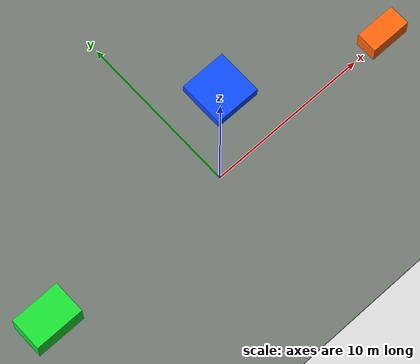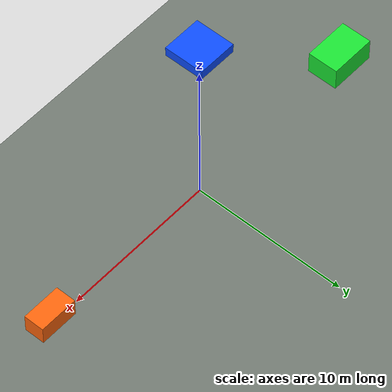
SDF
<?xml version="1.0" ?>
<sdf version="1.10">
  <world name="agconav_500m_world">

    <plugin
      filename="gz-sim-physics-system"
      name="gz::sim::systems::Physics"/>

    <plugin
      filename="gz-sim-user-commands-system"
      name="gz::sim::systems::UserCommands"/>

    <plugin
      filename="gz-sim-scene-broadcaster-system"
      name="gz::sim::systems::SceneBroadcaster"/>

    <!-- GPU LiDAR 센서를 동작시키는 시스템 -->
    <plugin
      filename="gz-sim-sensors-system"
      name="gz::sim::systems::Sensors">
      <render_engine>ogre2</render_engine>
    </plugin>

    <gravity>0 0 -9.81</gravity>

    <physics name="default_physics" type="ode">
      <max_step_size>0.001</max_step_size>
      <real_time_factor>1.0</real_time_factor>
    </physics>

    <light type="directional" name="sun">
      <cast_shadows>true</cast_shadows>
      <pose>0 0 100 0 0 0</pose>
      <diffuse>0.9 0.9 0.9 1</diffuse>
      <specular>0.2 0.2 0.2 1</specular>
      <direction>-0.4 0.2 -1</direction>
    </light>

    <!-- 500m × 500m 바닥 -->
    <model name="ground_500m">
      <static>true</static>
      <pose>0 0 -0.1 0 0 0</pose>

      <link name="ground_link">
        <collision name="collision">
          <geometry>
            <box>
              <size>500 500 0.2</size>
            </box>
          </geometry>
        </collision>

        <visual name="visual">
          <geometry>
            <box>
              <size>500 500 0.2</size>
            </box>
          </geometry>
          <material>
            <ambient>0.35 0.38 0.35 1</ambient>
            <diffuse>0.45 0.48 0.45 1</diffuse>
          </material>
        </visual>
      </link>
    </model>

    <!-- 파란색 더미 드론 -->
    <model name="drone">
      <static>true</static>
      <pose>0 0 12 0 0 0</pose>

      <link name="base_link">
        <visual name="body">
          <geometry>
            <box>
              <size>2.5 2.5 0.6</size>
            </box>
          </geometry>
          <material>
            <ambient>0.05 0.2 0.9 1</ambient>
            <diffuse>0.05 0.3 1 1</diffuse>
          </material>
        </visual>

        <!-- +Y축으로 90도 회전하여 아래쪽을 바라봄 -->
        <sensor name="lidar" type="gpu_lidar">
          <pose>0 0 -0.4 0 1.5708 0</pose>
          <topic>/drone/lidar</topic>
          <update_rate>10</update_rate>
          <always_on>true</always_on>
          <visualize>true</visualize>

          <lidar>
            <scan>
              <horizontal>
                <samples>360</samples>
                <resolution>1</resolution>
                <min_angle>-3.14159</min_angle>
                <max_angle>3.14159</max_angle>
              </horizontal>
              <vertical>
                <samples>16</samples>
                <resolution>1</resolution>
                <min_angle>-0.2618</min_angle>
                <max_angle>0.2618</max_angle>
              </vertical>
            </scan>
            <range>
              <min>0.3</min>
              <max>100</max>
              <resolution>0.02</resolution>
            </range>
          </lidar>
        </sensor>
      </link>
    </model>

    <!-- 초록색 더미 4륜 로봇 -->
    <model name="wheel">
      <static>true</static>
      <pose>-12 0 0.75 0 0 0</pose>

      <link name="base_link">
        <visual name="body">
          <geometry>
            <box>
              <size>3 2 1.5</size>
            </box>
          </geometry>
          <material>
            <ambient>0.05 0.7 0.1 1</ambient>
            <diffuse>0.1 0.9 0.2 1</diffuse>
          </material>
        </visual>

        <sensor name="lidar" type="gpu_lidar">
          <pose>0 0 1.0 0 0 0</pose>
          <topic>/wheel/lidar</topic>
          <update_rate>10</update_rate>
          <always_on>true</always_on>
          <visualize>true</visualize>

          <lidar>
            <scan>
              <horizontal>
                <samples>360</samples>
                <resolution>1</resolution>
                <min_angle>-3.14159</min_angle>
                <max_angle>3.14159</max_angle>
              </horizontal>
              <vertical>
                <samples>16</samples>
                <resolution>1</resolution>
                <min_angle>-0.2618</min_angle>
                <max_angle>0.2618</max_angle>
              </vertical>
            </scan>
            <range>
              <min>0.3</min>
              <max>80</max>
              <resolution>0.02</resolution>
            </range>
          </lidar>
        </sensor>
      </link>
    </model>

    <!-- 주황색 더미 4족 로봇 -->
    <model name="leg">
      <static>true</static>
      <pose>12 0 0.9 0 0 0</pose>

      <link name="base_link">
        <visual name="body">
          <geometry>
            <box>
              <size>2.5 1.3 1.2</size>
            </box>
          </geometry>
          <material>
            <ambient>0.9 0.3 0.05 1</ambient>
            <diffuse>1 0.4 0.05 1</diffuse>
          </material>
        </visual>

        <sensor name="lidar" type="gpu_lidar">
          <pose>0 0 0.9 0 0 0</pose>
          <topic>/leg/lidar</topic>
          <update_rate>10</update_rate>
          <always_on>true</always_on>
          <visualize>true</visualize>

          <lidar>
            <scan>
              <horizontal>
                <samples>360</samples>
                <resolution>1</resolution>
                <min_angle>-3.14159</min_angle>
                <max_angle>3.14159</max_angle>
              </horizontal>
              <vertical>
                <samples>16</samples>
                <resolution>1</resolution>
                <min_angle>-0.2618</min_angle>
                <max_angle>0.2618</max_angle>
              </vertical>
            </scan>
            <range>
              <min>0.3</min>
              <max>80</max>
              <resolution>0.02</resolution>
            </range>
          </lidar>
        </sensor>
      </link>
    </model>

  </world>
</sdf>
